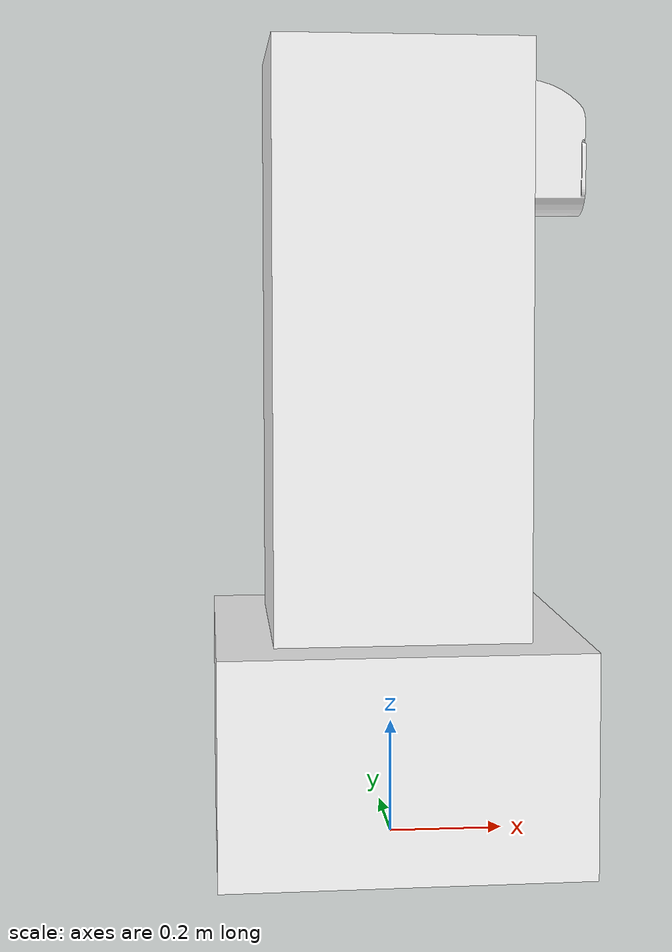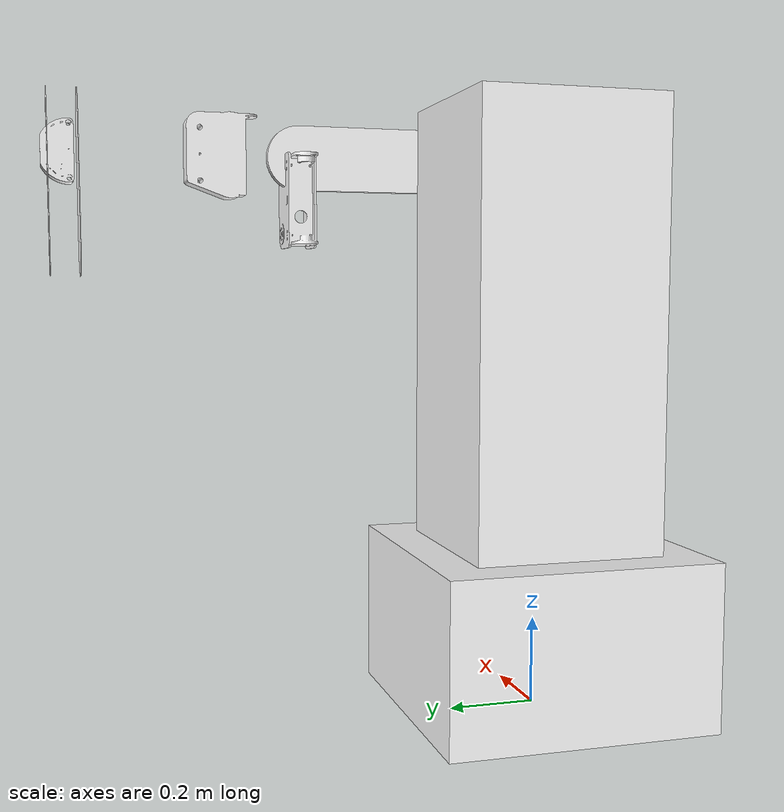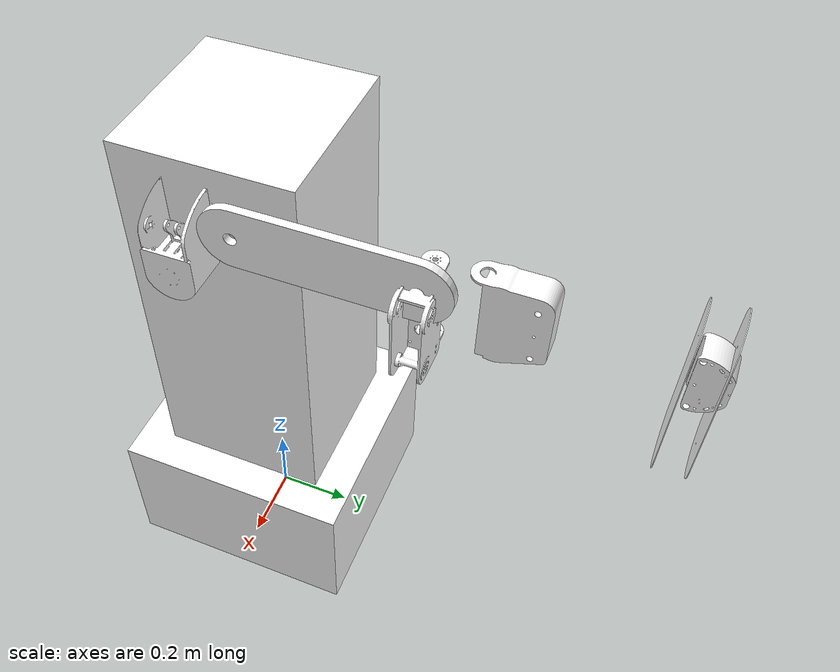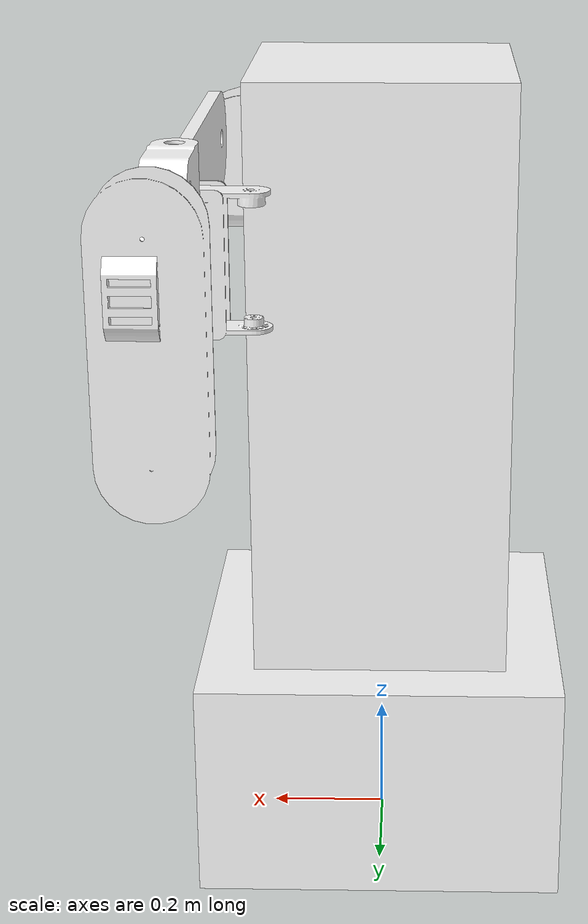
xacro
<?xml version="1.0"?>
<robot xmlns:xacro="http://www.ros.org/wiki/xacro" name="robot">

<xacro:property name="scale" value="0.001" />
<xacro:property name="inertia_scale" value="0.000000001" />
<xacro:property name="PI" value="3.14159" />

<xacro:property name="base_width" value="0.62265" />
<xacro:property name="base_height" value="0.37817" />
<xacro:property name="base_mass" value="0.22" />

<xacro:property name="body_width" value="0.4324" />
<xacro:property name="body_height" value="1.00318" />
<xacro:property name="body_mass" value="0.22" />

<xacro:property name="shoulder_length" value="0.2" />
<xacro:property name="shoulder_short_length" value="0.095" />
<xacro:property name="shoulder_offset" value="0.035" />
<xacro:property name="shoulder_width" value="0.10635" />
<xacro:property name="shoulder_height" value="0.22" />
<xacro:property name="shoulder_mass" value="0.22" />

<xacro:property name="upper_arm_length" value="0.55" />
<xacro:property name="upper_arm_short_length" value="0.4" />
<xacro:property name="upper_arm_width" value="0.02" />
<xacro:property name="upper_arm_height" value="0.15" />
<xacro:property name="upper_arm_mass" value="0.22" />

<xacro:property name="elbow_bracket_short_length" value="0.129" />
<xacro:property name="elbow_bracket_length" value="0.151" />
<xacro:property name="elbow_bracket_width" value="0.0651" />
<xacro:property name="elbow_bracket_height" value=".2073" />
<xacro:property name="elbow_bracket_mass" value="0.22" />

<xacro:property name="elbow_block_short_length" value="0.106" />
<xacro:property name="elbow_block_offset" value="0.0315" />
<xacro:property name="elbow_block_length" value="0.16822" />
<xacro:property name="elbow_block_width" value="0.06352" />
<xacro:property name="elbow_block_height" value="0.19493" />
<xacro:property name="elbow_block_mass" value="0.22" />

<xacro:property name="lower_arm_length" value="0.37" />
<xacro:property name="lower_arm_offset" value="0.066" />
<xacro:property name="lower_arm_wrist_offset" value="0.015" />
<!-- theirs ours-->
<xacro:property name="lower_arm_width" value="0.03" />
<xacro:property name="lower_arm_height" value="0.14" />
<xacro:property name="lower_arm_mass" value="0.22" />

<xacro:property name="wrist_length" value="0.07238" />
<xacro:property name="wrist_width" value="0.0635" />
<xacro:property name="wrist_height" value="0.14" />
<xacro:property name="wrist_offset" value="0.0085" />
<xacro:property name="wrist_mass" value="0.22" />

<xacro:macro name="inertial_template" params="mass length width height">
 <inertial>
  <mass value="${mass}"/>
  <inertia ixx="${1/12*mass*(length*length+height*height)}" ixy="0.0" ixz="0.0" iyy="${1/12*mass*(length*length+width*width)}" iyz="0.0" izz="${1/12*mass*(width*width+height*height)}"/>
 </inertial>
</xacro:macro>

<link name="base_link">
  <visual>
    <origin xyz="0 0 ${base_height/2}" rpy="0 0 0"/>
    <geometry>
      <box size="${base_width} ${base_width} ${base_height}" />
    </geometry>
    <material name="white">
     <color rgba="1 1 1 1"/>
    </material>
  </visual>
  <collision>
    <origin xyz="0 0 ${base_height/2}" rpy="0 0 0"/>
    <geometry>
      <box size="${base_width} ${base_width} ${base_height}" />
    </geometry>
  </collision>
  <xacro:inertial_template mass="${base_mass}" length="${base_width}" width="${base_width}" height="${base_height}"/>
</link>

<link name="body_link">
 <visual>
  <origin xyz="0 0 ${body_height/2}" rpy="0 0 0"/>
  <geometry>
     <box size="${body_width} ${body_width} ${body_height}" />
  </geometry>
  <material name="white">
   <color rgba="1 1 1 1"/>
  </material>
 </visual>
 <collision>
  <origin xyz="0 0 ${body_height/2}" rpy="0 0 0"/>
  <geometry>
   <box size="${body_width} ${body_width} ${body_height}" />
  </geometry>
 </collision>
 <xacro:inertial_template mass="${body_mass}" length="${body_width}" width="${body_width}" height="${body_height}"/>
</link>

<link name="shoulder_link">
 <visual>
  <origin xyz="0 ${-shoulder_offset} ${-shoulder_height/2}" rpy="${PI/2} 0 ${PI/2}"/>
  <geometry>
     <mesh filename="package://talos_description/meshes/shoulder_link.stl" scale="${scale} ${scale} ${scale}"/>
  </geometry>
  <material name="white">
   <color rgba="1 1 1 1"/>
  </material>
 </visual>
 <collision>
  <origin xyz="${shoulder_width/2} ${(shoulder_length/2)-shoulder_offset} 0" rpy="0 0 0"/>
  <geometry>
   <box size="${shoulder_width} ${shoulder_length} ${shoulder_height}" />
  </geometry>
 </collision>
 <xacro:inertial_template mass="${shoulder_mass}" length="${shoulder_width}" width="${shoulder_length}" height="${shoulder_height}"/>
</link>

<link name="upper_arm_link">
 <visual>
  <origin xyz="${upper_arm_width/2} ${-(upper_arm_length-upper_arm_short_length)/2} ${-upper_arm_height/2}" rpy="0 0 ${PI/2}"/>
  <geometry>
     <mesh filename="package://talos_description/meshes/upper_arm_link.stl" scale="${scale} ${scale} ${scale}"/>
  </geometry>
  <material name="white">
   <color rgba="1 1 1 1"/>
  </material>
 </visual>
 <collision>
  <origin xyz="0 ${upper_arm_short_length/2} 0" rpy="0 0 0"/>
  <geometry>
   <box size="${upper_arm_width} ${upper_arm_length} ${upper_arm_height}" />
  </geometry>
 </collision>
 <xacro:inertial_template mass="${upper_arm_mass}" length="${upper_arm_width}" width="${upper_arm_length}" height="${upper_arm_height}"/>
</link>

<link name="elbow_bracket_link">
 <visual>
  <origin xyz="${elbow_bracket_width/2} 0 ${-elbow_bracket_height/2}" rpy="0 0 ${PI/2}"/>
  <geometry>
     <mesh filename="package://talos_description/meshes/elbow_bracket_link.stl" scale="${scale} ${scale} ${scale}"/>
  </geometry>
  <material name="white">
   <color rgba="1 1 1 1"/>
  </material>
 </visual>
 <collision>
  <origin xyz="0 ${elbow_bracket_length/2} 0" rpy="0 0 0"/>
  <geometry>
   <box size="${elbow_bracket_width} ${elbow_bracket_length} ${elbow_bracket_height}" />
  </geometry>
 </collision>
 <xacro:inertial_template mass="${elbow_bracket_mass}" length="${elbow_bracket_width}" width="${elbow_bracket_length}" height="${elbow_bracket_height}"/>
</link>

<link name="elbow_block_link">
 <visual>
  <origin xyz="-${elbow_block_width/2} ${elbow_block_length-elbow_block_offset} ${elbow_block_height/2}" rpy="${-PI/2} 0 ${-PI/2}"/> <!--${elbow_bracket_short_length} ${-elbow_block_height/2}-->
  <geometry>
     <mesh filename="package://talos_description/meshes/elbow_block_link.stl" scale="${scale} ${scale} ${scale}"/>
  </geometry>
  <material name="white">
   <color rgba="1 1 1 1"/>
  </material>
 </visual>
 <collision>
  <origin xyz="0 ${(elbow_block_length/2)-elbow_block_offset} 0" rpy="0 0 0"/>
  <geometry>
   <box size="${elbow_block_width} ${elbow_block_length} ${elbow_block_height}" />
  </geometry>
 </collision>
 <xacro:inertial_template mass="${elbow_block_mass}" length="${elbow_block_width}" width="${elbow_block_length}" height="${elbow_block_height}"/>
</link>

<link name="lower_arm_link">
 <visual>
  <origin xyz="-${lower_arm_width/2} ${lower_arm_length-lower_arm_offset} ${lower_arm_height/2}" rpy="${-PI/2} 0 ${-PI/2}"/>
  <geometry>
     <mesh filename="package://talos_description/meshes/lower_arm_link.stl" scale="${scale} ${scale} ${scale}"/>
  </geometry>
  <material name="white">
   <color rgba="1 1 1 1"/>
  </material>
 </visual>
 <collision>
  <origin xyz="0 ${lower_arm_length/2 - lower_arm_offset} 0" rpy="0 0 0"/>
  <geometry>
   <box size="${lower_arm_width} ${lower_arm_length} ${lower_arm_height}" />
  </geometry>
 </collision>
 <xacro:inertial_template mass="${lower_arm_mass}" length="${lower_arm_width}" width="${lower_arm_length}" height="${lower_arm_height}"/>
</link>

<link name="wrist_link">
 <visual>
  <origin xyz="-${wrist_width/2} ${wrist_length-wrist_offset} ${wrist_height/2}" rpy="${-PI/2} 0 ${-PI/2}"/>
  <geometry>
     <mesh filename="package://talos_description/meshes/wrist_link.stl" scale="${scale} ${scale} ${scale}"/>
  </geometry>
  <material name="white">
   <color rgba="1 1 1 1"/>
  </material>
 </visual>
 <collision>
  <origin xyz="0 ${wrist_length/2 - wrist_offset} 0" rpy="0 0 0"/>
  <geometry>
   <box size="${wrist_width} ${wrist_length} ${wrist_height}" />
  </geometry>
 </collision>
 <xacro:inertial_template mass="${wrist_mass}" length="${wrist_width}" width="${wrist_length}" height="${wrist_height}"/>
</link>

<joint name="base_to_body" type="revolute">
 <limit velocity="1.0" effort="1000.0" lower="${-PI}" upper="${PI}"/>
 <axis xyz="0 0 1"/>
 <parent link="base_link" />
 <child link="body_link" />
 <origin xyz="0 0 ${base_height}" rpy="0 0 0"/>
</joint>

<joint name="body_to_shoulder" type="revolute">
 <limit velocity="1.0" effort="1000.0" lower="${-PI/2}" upper="0"/>
 <axis xyz="0 0 1"/>
 <parent link="body_link" />
 <child link="shoulder_link" />
 <origin xyz="${body_width/2} 0 ${body_height - shoulder_height/2}" rpy="0 0 0"/>
</joint>

<joint name="shoulder_to_upper_arm" type="revolute">
 <limit velocity="1.0" effort="1000.0" lower="${-PI/4}" upper="${PI/4}"/>
 <axis xyz="1 0 0"/>
 <parent link="shoulder_link" />
 <child link="upper_arm_link" />
 <origin xyz="${shoulder_width/2} ${shoulder_short_length} 0" rpy="0 0 0"/>
</joint>

<joint name="upper_arm_to_elbow_bracket" type="revolute">
 <limit velocity="1.0" effort="1000.0" lower="${-PI/4}" upper="${PI/4}"/>
 <axis xyz="1 0 0"/>
 <parent link="upper_arm_link" />
 <child link="elbow_bracket_link" />
 <origin xyz="0 ${upper_arm_short_length} 0" rpy="0 0 0"/>
</joint>

<joint name="elbow_bracket_to_elbow_block" type="revolute">
 <limit velocity="1.0" effort="1000.0" lower="${-PI/4}" upper="${PI/4}"/>
 <axis xyz="0 0 1"/>
 <parent link="elbow_bracket_link" />
 <child link="elbow_block_link" />
 <origin xyz="0 ${elbow_bracket_short_length} 0" rpy="0 0 0"/>
</joint>

<joint name="elbow_block_to_lower_arm" type="revolute">
 <limit velocity="1.0" effort="1000.0" lower="${-PI/4}" upper="${PI/4}"/>
 <axis xyz="1 0 0"/>
 <parent link="elbow_block_link" />
 <child link="lower_arm_link" />
 <origin xyz="0 ${elbow_block_short_length} 0" rpy="0 0 0"/>
</joint>

<joint name="lower_arm_to_wrist" type="revolute">
 <limit velocity="1.0" effort="1000.0" lower="${-PI/4}" upper="${PI/4}"/>
 <axis xyz="1 0 0"/>
 <parent link="lower_arm_link" />
 <child link="wrist_link" />
 <origin xyz="0 ${lower_arm_length-lower_arm_offset-lower_arm_wrist_offset} 0" rpy="0 0 0"/>
</joint>

</robot>
